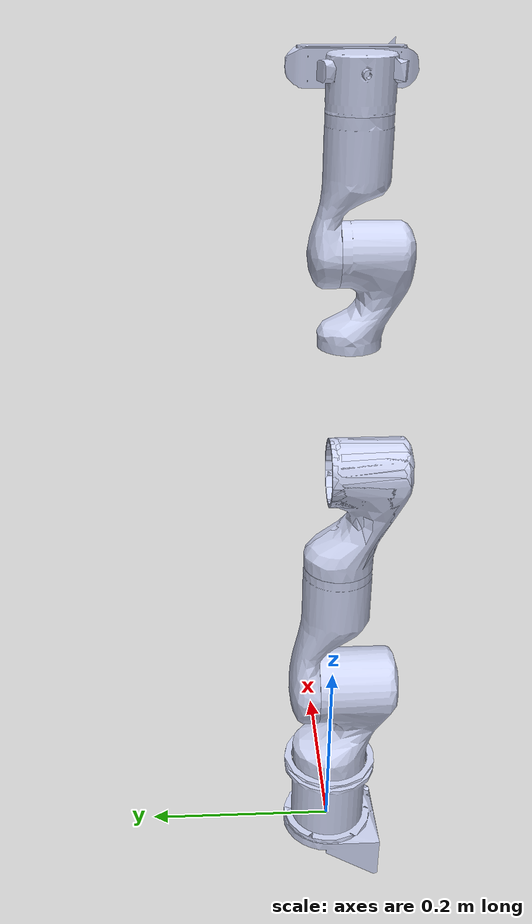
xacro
<?xml version="1.0"?>
<robot name="rm65_b_v_left" xmlns:xacro="http://www.ros.org/wiki/xacro">
  <!-- Define constants -->
  <xacro:property name="mesh_path" value="file://$(find dual_rm_65b_description)/meshes/" />
  <!-- Macro for visual and collision elements -->
  <xacro:macro name="visual_collision" params="mesh">
    <visual>
      <origin xyz="0 0 0" rpy="0 0 0" />
      <geometry>
        <mesh filename="${mesh_path}${mesh}" />
      </geometry>
      <material name="">
        <color rgba="0.79216 0.81961 0.93333 1" />
      </material>
    </visual>
    <collision>
      <origin xyz="0 0 0" rpy="0 0 0" />
      <geometry>
        <mesh filename="${mesh_path}${mesh}" />
      </geometry>
    </collision>
  </xacro:macro>
  <link
    name="l_base_link1">
    <inertial>
      <origin
        xyz="-3.58E-05 -0.0056915 0.024464"
        rpy="0 0 0" />
      <mass
        value="0.23441" />
      <inertia
        ixx="0.00027369"
        ixy="6.5702E-08"
        ixz="2.7812E-09"
        iyy="0.000264"
        iyz="-1.6355E-06"
        izz="0.00036679" />
    </inertial>
    <xacro:visual_collision mesh="l_base_link1.STL" />
  </link>
  <link
    name="l_link1">
    <inertial>
      <origin
        xyz="-2.9675E-07 0.021107 -0.025188"
        rpy="0 0 0" />
      <mass
        value="0.59353" />
      <inertia
        ixx="0.0012661"
        ixy="-5.363E-09"
        ixz="-2.109E-09"
        iyy="0.0011816"
        iyz="-0.00021118"
        izz="0.00056131" />
    </inertial>
    <xacro:visual_collision mesh="l_link1.STL" />
  </link>
  <link
    name="l_link2">
    <inertial>
      <origin
        xyz="0.15226 2.3916E-07 -0.0062027"
        rpy="0 0 0" />
      <mass
        value="0.86416" />
      <inertia
        ixx="0.00063253"
        ixy="2.0103E-09"
        ixz="0.00042162"
        iyy="0.0020527"
        iyz="3.5857E-09"
        izz="0.0019528" />
    </inertial>
    <xacro:visual_collision mesh="l_link2.STL" />
  </link>
  <link
    name="l_link3">
    <inertial>
      <origin
        xyz="4.7194E-06 -0.059592 0.010268"
        rpy="0 0 0" />
      <mass
        value="0.28963" />
      <inertia
        ixx="0.00063737"
        ixy="-6.2601E-08"
        ixz="-3.5046E-08"
        iyy="0.00015649"
        iyz="-0.00014461"
        izz="0.00061418" />
    </inertial>
    <xacro:visual_collision mesh="l_link3.STL" />
  </link>
  <link
    name="l_link4">
    <inertial>
      <origin
        xyz="2.9186E-07 -0.018042 -0.02154"
        rpy="0 0 0" />
      <mass
        value="0.23942" />
      <inertia
        ixx="0.00028595"
        ixy="-2.3562E-09"
        ixz="1.3938E-09"
        iyy="0.00026273"
        iyz="4.424E-05"
        izz="0.0001199" />
    </inertial>
    <xacro:visual_collision mesh="l_link4.STL" />
  </link>
  <link
    name="l_link5">
    <inertial>
      <origin
        xyz="4.2301E-06 -0.059381 0.0070671"
        rpy="0 0 0" />
      <mass
        value="0.21879" />
      <inertia
        ixx="0.00035053"
        ixy="-2.8554E-08"
        ixz="-1.67E-08"
        iyy="0.00010492"
        iyz="-7.824E-05"
        izz="0.00033447" />
    </inertial>
    <xacro:visual_collision mesh="l_link5.STL" />
  </link>
  <link
    name="l_link6">
    <inertial>
      <origin
        xyz="0.028764 -5.1529E-06 0.025085"
        rpy="0 0 0" />
      <mass
        value="0.22147" />
      <inertia
        ixx="0.0001376"
        ixy="-5.7488E-08"
        ixz="-1.6634E-05"
        iyy="0.00026855"
        iyz="1.7799E-08"
        izz="0.00035277" />
    </inertial>
    <xacro:visual_collision mesh="l_link6.STL" />
  </link>

  <joint
    name="l_joint1"
    type="revolute">
    <origin
      xyz="0 0 0.187"
      rpy="0 0 3.1415" />
    <parent
      link="l_base_link1" />
    <child
      link="l_link1" />
    <axis
      xyz="0 0 1" />
    <limit
      lower="-3.11"
      upper="3.11"
      effort="60"
      velocity="3.14" />
  </joint>
  <joint
    name="l_joint2"
    type="revolute">
    <origin
      xyz="0 0 0"
      rpy="1.5708 -1.5708 0" />
    <parent
      link="l_link1" />
    <child
      link="l_link2" />
    <axis
      xyz="0 0 1" />
    <limit
      lower="-2.27"
      upper="2.27"
      effort="60"
      velocity="3.14" />
  </joint>
  <joint
    name="l_joint3"
    type="revolute">
    <origin
      xyz="0.256 0 0"
      rpy="0 0 1.5708" />
    <parent
      link="l_link2" />
    <child
      link="l_link3" />
    <axis
      xyz="0 0 1" />
    <limit
      lower="-2.36"
      upper="2.36"
      effort="30"
      velocity="3.925" />
  </joint>
  <joint
    name="l_joint4"
    type="revolute">
    <origin
      xyz="0 -0.21 -0.00030007"
      rpy="1.5708 0 0" />
    <parent
      link="l_link3" />
    <child
      link="l_link4" />
    <axis
      xyz="0 0 1" />
    <limit
      lower="-3.11"
      upper="3.11"
      effort="10"
      velocity="3.925" />
  </joint>
  <joint
    name="l_joint5"
    type="revolute">
    <origin
      xyz="0 0 0"
      rpy="-1.5708 0 0" />
    <parent
      link="l_link4" />
    <child
      link="l_link5" />
    <axis
      xyz="0 0 1" />
    <limit
      lower="-2.23"
      upper="2.23"
      effort="10"
      velocity="3.925" />
  </joint>
  <joint
    name="l_joint6"
    type="revolute">
    <origin
      xyz="0 -0.115 -0.00029971"
      rpy="1.5708 0 0" />
    <parent
      link="l_link5" />
    <child
      link="l_link6" />
    <axis
      xyz="0 0 1" />
    <limit
      lower="-6.28"
      upper="6.28"
      effort="10"
      velocity="3.925" />
  </joint>
</robot>
